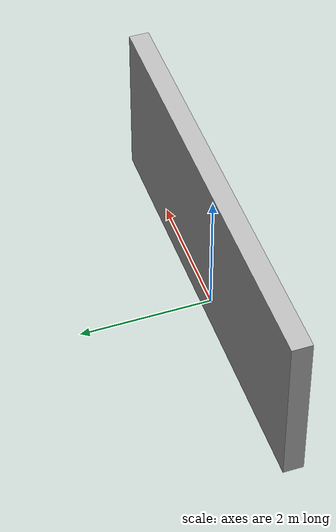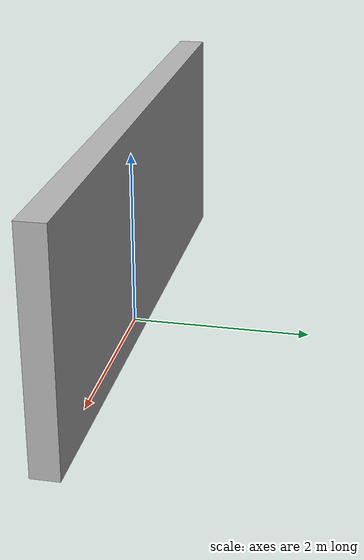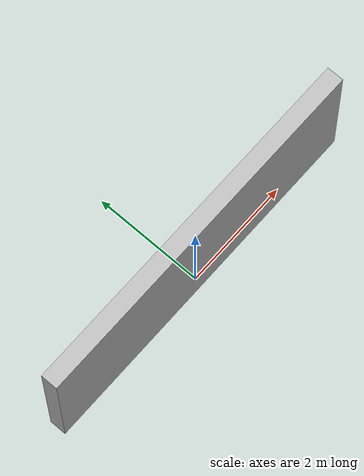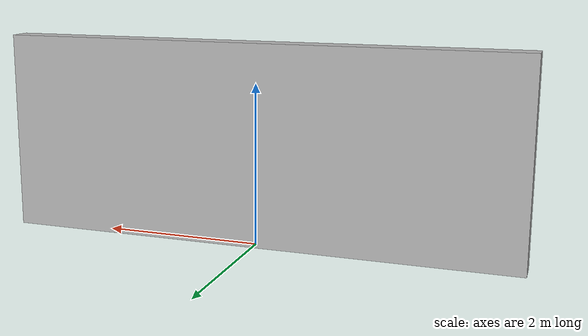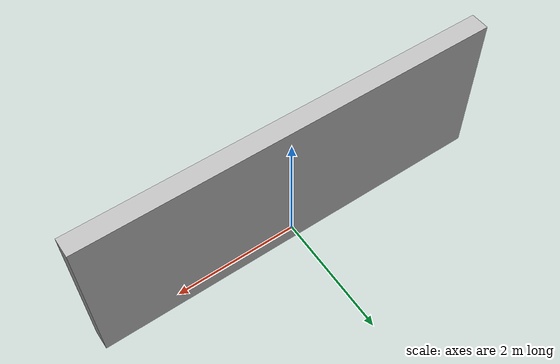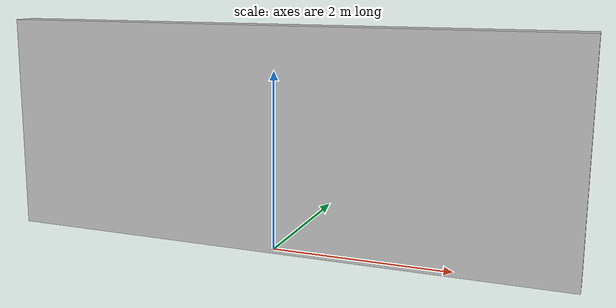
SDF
<?xml version="1.0" ?>
<sdf version="1.5">
  <model name="corridor_wall5">
    <static>true</static>
    <link name="link">
      <pose>0 0 1.25 0 0 0</pose>
      <collision name="collision">
        <geometry>
          <box>
            <size>6.5 0.3 2.5</size>
          </box>
        </geometry>
      </collision>
      <visual name="visual">
        <cast_shadows>false</cast_shadows>
        <geometry>
          <box>
            <size>6.5 0.3 2.5</size>
          </box>
        </geometry>
        <material>
          <script>
            <uri>model://corridor_wall5/materials/scripts</uri>
            <uri>model://corridor_wall5/materials/textures</uri>
            <name>vrc/corridor_wall5</name>
          </script>
        </material>
      </visual>
    </link>
  </model>
</sdf>
